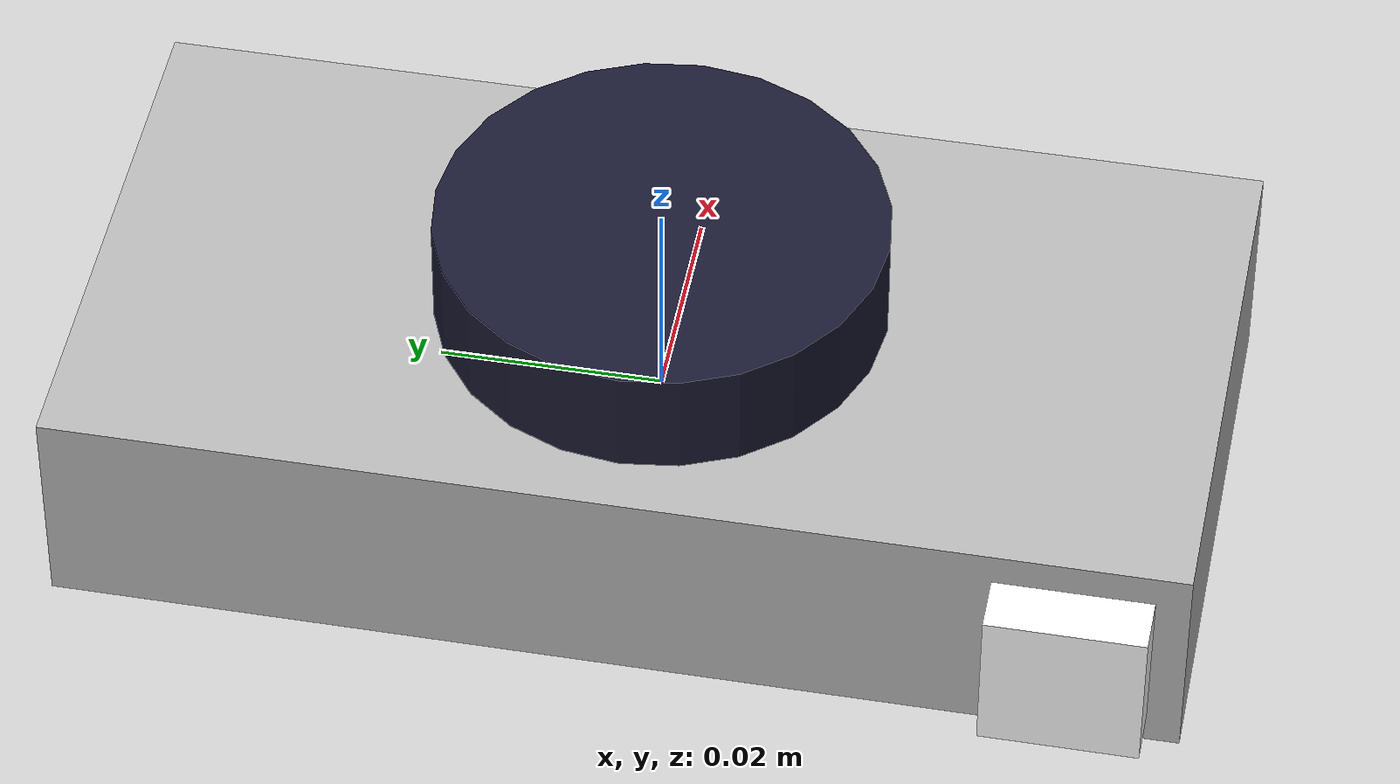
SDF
<?xml version="1.0" ?>
    <sdf version="1.5">

        <model name="camera">

            <link name="Main">
                <pose>0 0 0 0 -1.570796327 0</pose>
                <inertial>
                <mass>0.8</mass>
                <inertia>
                    <ixx>0.8</ixx>
                    <iyy>0.8</iyy>
                    <izz>0.8</izz>
                </inertia>
                </inertial>
                <collision name="collision">
                <geometry>
                    <box>
                    <size>0.02 0.1 0.05</size>
                    </box>
                </geometry>
                </collision>
                <visual name="visual">
                <geometry>
                    <box>
                    <size>0.02 0.1 0.05</size>
                    </box>
                </geometry>
                </visual>

                <sensor name="camera" type="camera">
                <topic>cam_basic</topic>
                <camera>
                    <box_type>full_2d</box_type>
                    <horizontal_fov>1.047</horizontal_fov>
                    <image>
                    <width>6000</width>
                    <height>4000</height>
                    </image>
                    <clip>
                    <near>0.1</near>
                    <far>10</far>
                    </clip>
                    <save enabled="true">
                    <path>Canon</path>
                    </save>
                    <noise>
                    <type>gaussian</type>
                    <mean>0.00</mean>
                    <stddev>0.0</stddev>
                    </noise>
                    <distortion>
                    <k1>1</k1>
                    <k2>10</k2>
                    <k3>5</k3>
                    <p1>10</p1>
                    <p2>10</p2>
                    <center>0.5 0.5</center>
                    </distortion>
                    <lens>
                    <type>stereographic</type>
                    <scale_to_hfov>true</scale_to_hfov>
                    <cutoff_angle>1.5707963267948966</cutoff_angle>
                    <env_texture_size>256</env_texture_size>
                    </lens>
                </camera>
                <always_on>1</always_on>
                <update_rate>24</update_rate>
                <visualize>true</visualize>

                <plugin
                    filename="gz-sim-camera-video-recorder-system"
                    name="gz::sim::systems::CameraVideoRecorder">
                    <service>cam_basic</service>
                    <use_sim_time>true</use_sim_time>
                    <fps>24</fps>
                </plugin>

		<plugin
                    filename="Take_Image"
                    name="gz::sim::v7::systems::TakeImages">
                    <service>cam_basic</service>
                    <path>/home/paul/FiducialTags/Simulations/Worlds/Canon</path>
                </plugin>

                </sensor>

            </link>

            <link name="Lens">

                <!-- Vertically offset the top cylinder by the length of the bottom
                    cylinder and half the length of this cylinder. -->
                <pose>0 0 0.015 0 0 0</pose>

                <inertial>
                    <mass>0.1</mass>
                    <pose>0 0 -0.015 0 0 0</pose>
                    <inertia>
                        <ixx>0.1</ixx>
                        <iyy>0.1</iyy>
                        <izz>0.1</izz>
                    </inertia>
                </inertial>

                <collision name="top_collision">
                <geometry>
                    <cylinder>
                    <!-- Radius and length provided by Velodyne -->
                    <radius>0.02</radius>
                    <length>0.01</length>
                    </cylinder>
                </geometry>
                </collision>

                <!-- The visual is mostly a copy of the collision -->
                <visual name="top_visual">
                <geometry>
                    <cylinder>
                    <radius>0.02</radius>
                    <length>0.01</length>
                    </cylinder>
                </geometry>

                <material> <!-- Wheel material -->
                    <ambient>0.1 0.1 0.1 1</ambient>
                    <diffuse>0.1 0.1 0.2 1</diffuse>
                    <specular>0 0 0 0</specular>
                    <emissive>0 0 0 1</emissive>
                </material> <!-- End wheel material -->

                </visual>

            </link>

            <link name="Top_Right">

                <!-- Vertically offset the top cylinder by the length of the bottom
                    cylinder and half the length of this cylinder. -->
                <pose>-0.0275 -0.04 0 0 0 0</pose>

                <inertial>
                    <mass>0.1</mass>
                    <pose>0.0275 0.04 0 0 0 0</pose>
                    <inertia>
                        <ixx>0.1</ixx>
                        <iyy>0.1</iyy>
                        <izz>0.1</izz>
                    </inertia>
                </inertial>

                <collision name="top_collision">
                <geometry>
                    <box>
                    <size>0.005 0.014 0.014</size>
                    </box>
                </geometry>
                </collision>

                <!-- The visual is mostly a copy of the collision -->
                <visual name="top_visual">
                <geometry>
                    <box>
                    <size>0.005 0.014 0.014</size>
                    </box>
                </geometry>

                <material> <!-- Wheel material -->
                    <ambient>0.1 0.1 0.1 1</ambient>
                    <diffuse>1 1 1 1</diffuse>
                    <specular>0 0 0 0</specular>
                    <emissive>0 0 0 1</emissive>
                </material> <!-- End wheel material -->

                </visual>

            </link>

            <joint type="fixed" name="main_and_front">
                <pose>0 0 0.015 0 0 0</pose>
                <parent>Main</parent>
                <child>Lens</child>
            </joint>

            <joint type="fixed" name="main_and_top_right">
                <pose>-0.0275 -0.04 0 0 0 0</pose>
                <parent>Main</parent>
                <child>Top_Right</child>
            </joint>

            <plugin
                filename="Position_Control"
                name="gz::sim::v7::systems::PositionController">
                <timestep_precision>10</timestep_precision>
                <xyz_offset> 0 0 0</xyz_offset>
                <rpy_offset> 0 0 0</rpy_offset>
            </plugin>

            <plugin
                filename="Pose_To_File"
                name="gz::sim::v7::systems::PoseToFile">
            </plugin>
        </model>
    </sdf>
